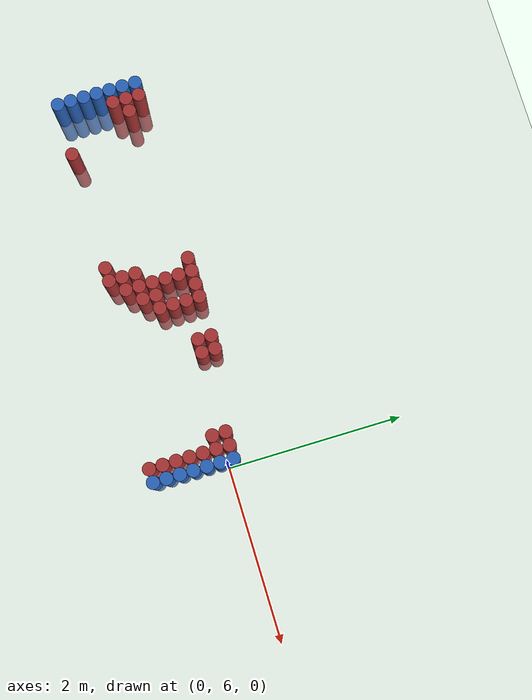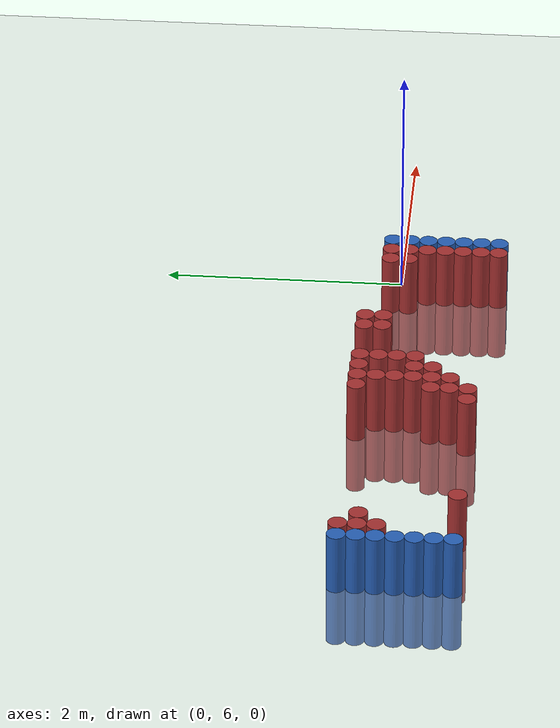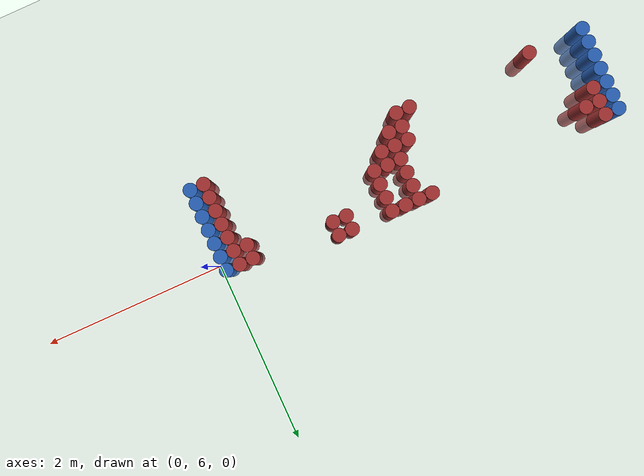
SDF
<sdf version="1.6">
 <world name="default">
  <model name="ground_plane">
   <static>1</static>
   <link name="link">
    <collision name="collision">
     <geometry><plane><normal>0 0 1</normal><size>100 100</size></plane></geometry>
     <surface><friction><ode><mu>100</mu><mu2>50</mu2></ode></friction></surface>
    </collision>
    <visual name="visual">
     <cast_shadows>0</cast_shadows>
     <geometry><plane><normal>0 0 1</normal><size>100 100</size></plane></geometry>
     <material>
      <script><uri>file://media/materials/scripts/gazebo.material</uri><name>Gazebo/Grey</name></script>
     </material>
    </visual>
   </link>
  </model>
  <model name="unit_cylinder_97">
   <static>1</static>
   <pose>-4.425000 5.325000 0.000000 0.000000 0.000000 0.000000</pose>
   <link name="link">
    <inertial>
     <mass>1</mass>
     <inertia><ixx>0.145833</ixx><ixy>0</ixy><ixz>0</ixz><iyy>0.145833</iyy><iyz>0</iyz><izz>0.125</izz></inertia>
    </inertial>
    <collision name="collision">
     <geometry><cylinder><radius>0.075000</radius><length>1</length></cylinder></geometry>
    </collision>
    <visual name="visual">
     <geometry><cylinder><radius>0.075000</radius><length>1</length></cylinder></geometry>
     <material>
      <ambient>0.152000 0.379000 0.720000 1</ambient>
      <diffuse>0.152000 0.379000 0.720000 1</diffuse>
     </material>
     <material>
      <script><name>Gazebo/Grey</name><uri>file://media/materials/scripts/gazebo.material</uri></script>
     </material>
    </visual>
   </link>
  </model>
  <model name="unit_cylinder_98">
   <static>1</static>
   <pose>-4.425000 5.475000 0.000000 0.000000 0.000000 0.000000</pose>
   <link name="link">
    <inertial>
     <mass>1</mass>
     <inertia><ixx>0.145833</ixx><ixy>0</ixy><ixz>0</ixz><iyy>0.145833</iyy><iyz>0</iyz><izz>0.125</izz></inertia>
    </inertial>
    <collision name="collision">
     <geometry><cylinder><radius>0.075000</radius><length>1</length></cylinder></geometry>
    </collision>
    <visual name="visual">
     <geometry><cylinder><radius>0.075000</radius><length>1</length></cylinder></geometry>
     <material>
      <ambient>0.152000 0.379000 0.720000 1</ambient>
      <diffuse>0.152000 0.379000 0.720000 1</diffuse>
     </material>
     <material>
      <script><name>Gazebo/Grey</name><uri>file://media/materials/scripts/gazebo.material</uri></script>
     </material>
    </visual>
   </link>
  </model>
  <model name="unit_cylinder_99">
   <static>1</static>
   <pose>-4.425000 5.625000 0.000000 0.000000 0.000000 0.000000</pose>
   <link name="link">
    <inertial>
     <mass>1</mass>
     <inertia><ixx>0.145833</ixx><ixy>0</ixy><ixz>0</ixz><iyy>0.145833</iyy><iyz>0</iyz><izz>0.125</izz></inertia>
    </inertial>
    <collision name="collision">
     <geometry><cylinder><radius>0.075000</radius><length>1</length></cylinder></geometry>
    </collision>
    <visual name="visual">
     <geometry><cylinder><radius>0.075000</radius><length>1</length></cylinder></geometry>
     <material>
      <ambient>0.152000 0.379000 0.720000 1</ambient>
      <diffuse>0.152000 0.379000 0.720000 1</diffuse>
     </material>
     <material>
      <script><name>Gazebo/Grey</name><uri>file://media/materials/scripts/gazebo.material</uri></script>
     </material>
    </visual>
   </link>
  </model>
  <model name="unit_cylinder_100">
   <static>1</static>
   <pose>-4.425000 5.775000 0.000000 0.000000 0.000000 0.000000</pose>
   <link name="link">
    <inertial>
     <mass>1</mass>
     <inertia><ixx>0.145833</ixx><ixy>0</ixy><ixz>0</ixz><iyy>0.145833</iyy><iyz>0</iyz><izz>0.125</izz></inertia>
    </inertial>
    <collision name="collision">
     <geometry><cylinder><radius>0.075000</radius><length>1</length></cylinder></geometry>
    </collision>
    <visual name="visual">
     <geometry><cylinder><radius>0.075000</radius><length>1</length></cylinder></geometry>
     <material>
      <ambient>0.152000 0.379000 0.720000 1</ambient>
      <diffuse>0.152000 0.379000 0.720000 1</diffuse>
     </material>
     <material>
      <script><name>Gazebo/Grey</name><uri>file://media/materials/scripts/gazebo.material</uri></script>
     </material>
    </visual>
   </link>
  </model>
  <model name="unit_cylinder_101">
   <static>1</static>
   <pose>-4.425000 5.925000 0.000000 0.000000 0.000000 0.000000</pose>
   <link name="link">
    <inertial>
     <mass>1</mass>
     <inertia><ixx>0.145833</ixx><ixy>0</ixy><ixz>0</ixz><iyy>0.145833</iyy><iyz>0</iyz><izz>0.125</izz></inertia>
    </inertial>
    <collision name="collision">
     <geometry><cylinder><radius>0.075000</radius><length>1</length></cylinder></geometry>
    </collision>
    <visual name="visual">
     <geometry><cylinder><radius>0.075000</radius><length>1</length></cylinder></geometry>
     <material>
      <ambient>0.152000 0.379000 0.720000 1</ambient>
      <diffuse>0.152000 0.379000 0.720000 1</diffuse>
     </material>
     <material>
      <script><name>Gazebo/Grey</name><uri>file://media/materials/scripts/gazebo.material</uri></script>
     </material>
    </visual>
   </link>
  </model>
  <model name="unit_cylinder_102">
   <static>1</static>
   <pose>-4.425000 6.075000 0.000000 0.000000 0.000000 0.000000</pose>
   <link name="link">
    <inertial>
     <mass>1</mass>
     <inertia><ixx>0.145833</ixx><ixy>0</ixy><ixz>0</ixz><iyy>0.145833</iyy><iyz>0</iyz><izz>0.125</izz></inertia>
    </inertial>
    <collision name="collision">
     <geometry><cylinder><radius>0.075000</radius><length>1</length></cylinder></geometry>
    </collision>
    <visual name="visual">
     <geometry><cylinder><radius>0.075000</radius><length>1</length></cylinder></geometry>
     <material>
      <ambient>0.152000 0.379000 0.720000 1</ambient>
      <diffuse>0.152000 0.379000 0.720000 1</diffuse>
     </material>
     <material>
      <script><name>Gazebo/Grey</name><uri>file://media/materials/scripts/gazebo.material</uri></script>
     </material>
    </visual>
   </link>
  </model>
  <model name="unit_cylinder_103">
   <static>1</static>
   <pose>-4.425000 6.225000 0.000000 0.000000 0.000000 0.000000</pose>
   <link name="link">
    <inertial>
     <mass>1</mass>
     <inertia><ixx>0.145833</ixx><ixy>0</ixy><ixz>0</ixz><iyy>0.145833</iyy><iyz>0</iyz><izz>0.125</izz></inertia>
    </inertial>
    <collision name="collision">
     <geometry><cylinder><radius>0.075000</radius><length>1</length></cylinder></geometry>
    </collision>
    <visual name="visual">
     <geometry><cylinder><radius>0.075000</radius><length>1</length></cylinder></geometry>
     <material>
      <ambient>0.152000 0.379000 0.720000 1</ambient>
      <diffuse>0.152000 0.379000 0.720000 1</diffuse>
     </material>
     <material>
      <script><name>Gazebo/Grey</name><uri>file://media/materials/scripts/gazebo.material</uri></script>
     </material>
    </visual>
   </link>
  </model>
  <model name="unit_cylinder_126">
   <static>1</static>
   <pose>-4.275000 5.925000 0.000000 0.000000 0.000000 0.000000</pose>
   <link name="link">
    <inertial>
     <mass>1</mass>
     <inertia><ixx>0.145833</ixx><ixy>0</ixy><ixz>0</ixz><iyy>0.145833</iyy><iyz>0</iyz><izz>0.125</izz></inertia>
    </inertial>
    <collision name="collision">
     <geometry><cylinder><radius>0.075000</radius><length>1</length></cylinder></geometry>
    </collision>
    <visual name="visual">
     <geometry><cylinder><radius>0.075000</radius><length>1</length></cylinder></geometry>
     <material>
      <ambient>0.648000 0.192000 0.192000 1</ambient>
      <diffuse>0.648000 0.192000 0.192000 1</diffuse>
     </material>
     <material>
      <script><name>Gazebo/Grey</name><uri>file://media/materials/scripts/gazebo.material</uri></script>
     </material>
    </visual>
   </link>
  </model>
  <model name="unit_cylinder_127">
   <static>1</static>
   <pose>-4.275000 6.075000 0.000000 0.000000 0.000000 0.000000</pose>
   <link name="link">
    <inertial>
     <mass>1</mass>
     <inertia><ixx>0.145833</ixx><ixy>0</ixy><ixz>0</ixz><iyy>0.145833</iyy><iyz>0</iyz><izz>0.125</izz></inertia>
    </inertial>
    <collision name="collision">
     <geometry><cylinder><radius>0.075000</radius><length>1</length></cylinder></geometry>
    </collision>
    <visual name="visual">
     <geometry><cylinder><radius>0.075000</radius><length>1</length></cylinder></geometry>
     <material>
      <ambient>0.648000 0.192000 0.192000 1</ambient>
      <diffuse>0.648000 0.192000 0.192000 1</diffuse>
     </material>
     <material>
      <script><name>Gazebo/Grey</name><uri>file://media/materials/scripts/gazebo.material</uri></script>
     </material>
    </visual>
   </link>
  </model>
  <model name="unit_cylinder_128">
   <static>1</static>
   <pose>-4.275000 6.225000 0.000000 0.000000 0.000000 0.000000</pose>
   <link name="link">
    <inertial>
     <mass>1</mass>
     <inertia><ixx>0.145833</ixx><ixy>0</ixy><ixz>0</ixz><iyy>0.145833</iyy><iyz>0</iyz><izz>0.125</izz></inertia>
    </inertial>
    <collision name="collision">
     <geometry><cylinder><radius>0.075000</radius><length>1</length></cylinder></geometry>
    </collision>
    <visual name="visual">
     <geometry><cylinder><radius>0.075000</radius><length>1</length></cylinder></geometry>
     <material>
      <ambient>0.648000 0.192000 0.192000 1</ambient>
      <diffuse>0.648000 0.192000 0.192000 1</diffuse>
     </material>
     <material>
      <script><name>Gazebo/Grey</name><uri>file://media/materials/scripts/gazebo.material</uri></script>
     </material>
    </visual>
   </link>
  </model>
  <model name="unit_cylinder_143">
   <static>1</static>
   <pose>-4.125000 6.075000 0.000000 0.000000 0.000000 0.000000</pose>
   <link name="link">
    <inertial>
     <mass>1</mass>
     <inertia><ixx>0.145833</ixx><ixy>0</ixy><ixz>0</ixz><iyy>0.145833</iyy><iyz>0</iyz><izz>0.125</izz></inertia>
    </inertial>
    <collision name="collision">
     <geometry><cylinder><radius>0.075000</radius><length>1</length></cylinder></geometry>
    </collision>
    <visual name="visual">
     <geometry><cylinder><radius>0.075000</radius><length>1</length></cylinder></geometry>
     <material>
      <ambient>0.648000 0.192000 0.192000 1</ambient>
      <diffuse>0.648000 0.192000 0.192000 1</diffuse>
     </material>
     <material>
      <script><name>Gazebo/Grey</name><uri>file://media/materials/scripts/gazebo.material</uri></script>
     </material>
    </visual>
   </link>
  </model>
  <model name="unit_cylinder_150">
   <static>1</static>
   <pose>-3.825000 5.325000 0.000000 0.000000 0.000000 0.000000</pose>
   <link name="link">
    <inertial>
     <mass>1</mass>
     <inertia><ixx>0.145833</ixx><ixy>0</ixy><ixz>0</ixz><iyy>0.145833</iyy><iyz>0</iyz><izz>0.125</izz></inertia>
    </inertial>
    <collision name="collision">
     <geometry><cylinder><radius>0.075000</radius><length>1</length></cylinder></geometry>
    </collision>
    <visual name="visual">
     <geometry><cylinder><radius>0.075000</radius><length>1</length></cylinder></geometry>
     <material>
      <ambient>0.648000 0.192000 0.192000 1</ambient>
      <diffuse>0.648000 0.192000 0.192000 1</diffuse>
     </material>
     <material>
      <script><name>Gazebo/Grey</name><uri>file://media/materials/scripts/gazebo.material</uri></script>
     </material>
    </visual>
   </link>
  </model>
  <model name="unit_cylinder_166">
   <static>1</static>
   <pose>-2.475000 5.325000 0.000000 0.000000 0.000000 0.000000</pose>
   <link name="link">
    <inertial>
     <mass>1</mass>
     <inertia><ixx>0.145833</ixx><ixy>0</ixy><ixz>0</ixz><iyy>0.145833</iyy><iyz>0</iyz><izz>0.125</izz></inertia>
    </inertial>
    <collision name="collision">
     <geometry><cylinder><radius>0.075000</radius><length>1</length></cylinder></geometry>
    </collision>
    <visual name="visual">
     <geometry><cylinder><radius>0.075000</radius><length>1</length></cylinder></geometry>
     <material>
      <ambient>0.648000 0.192000 0.192000 1</ambient>
      <diffuse>0.648000 0.192000 0.192000 1</diffuse>
     </material>
     <material>
      <script><name>Gazebo/Grey</name><uri>file://media/materials/scripts/gazebo.material</uri></script>
     </material>
    </visual>
   </link>
  </model>
  <model name="unit_cylinder_176">
   <static>1</static>
   <pose>-2.325000 5.325000 0.000000 0.000000 0.000000 0.000000</pose>
   <link name="link">
    <inertial>
     <mass>1</mass>
     <inertia><ixx>0.145833</ixx><ixy>0</ixy><ixz>0</ixz><iyy>0.145833</iyy><iyz>0</iyz><izz>0.125</izz></inertia>
    </inertial>
    <collision name="collision">
     <geometry><cylinder><radius>0.075000</radius><length>1</length></cylinder></geometry>
    </collision>
    <visual name="visual">
     <geometry><cylinder><radius>0.075000</radius><length>1</length></cylinder></geometry>
     <material>
      <ambient>0.648000 0.192000 0.192000 1</ambient>
      <diffuse>0.648000 0.192000 0.192000 1</diffuse>
     </material>
     <material>
      <script><name>Gazebo/Grey</name><uri>file://media/materials/scripts/gazebo.material</uri></script>
     </material>
    </visual>
   </link>
  </model>
  <model name="unit_cylinder_177">
   <static>1</static>
   <pose>-2.325000 5.475000 0.000000 0.000000 0.000000 0.000000</pose>
   <link name="link">
    <inertial>
     <mass>1</mass>
     <inertia><ixx>0.145833</ixx><ixy>0</ixy><ixz>0</ixz><iyy>0.145833</iyy><iyz>0</iyz><izz>0.125</izz></inertia>
    </inertial>
    <collision name="collision">
     <geometry><cylinder><radius>0.075000</radius><length>1</length></cylinder></geometry>
    </collision>
    <visual name="visual">
     <geometry><cylinder><radius>0.075000</radius><length>1</length></cylinder></geometry>
     <material>
      <ambient>0.648000 0.192000 0.192000 1</ambient>
      <diffuse>0.648000 0.192000 0.192000 1</diffuse>
     </material>
     <material>
      <script><name>Gazebo/Grey</name><uri>file://media/materials/scripts/gazebo.material</uri></script>
     </material>
    </visual>
   </link>
  </model>
  <model name="unit_cylinder_178">
   <static>1</static>
   <pose>-2.325000 5.625000 0.000000 0.000000 0.000000 0.000000</pose>
   <link name="link">
    <inertial>
     <mass>1</mass>
     <inertia><ixx>0.145833</ixx><ixy>0</ixy><ixz>0</ixz><iyy>0.145833</iyy><iyz>0</iyz><izz>0.125</izz></inertia>
    </inertial>
    <collision name="collision">
     <geometry><cylinder><radius>0.075000</radius><length>1</length></cylinder></geometry>
    </collision>
    <visual name="visual">
     <geometry><cylinder><radius>0.075000</radius><length>1</length></cylinder></geometry>
     <material>
      <ambient>0.648000 0.192000 0.192000 1</ambient>
      <diffuse>0.648000 0.192000 0.192000 1</diffuse>
     </material>
     <material>
      <script><name>Gazebo/Grey</name><uri>file://media/materials/scripts/gazebo.material</uri></script>
     </material>
    </visual>
   </link>
  </model>
  <model name="unit_cylinder_179">
   <static>1</static>
   <pose>-2.325000 6.225000 0.000000 0.000000 0.000000 0.000000</pose>
   <link name="link">
    <inertial>
     <mass>1</mass>
     <inertia><ixx>0.145833</ixx><ixy>0</ixy><ixz>0</ixz><iyy>0.145833</iyy><iyz>0</iyz><izz>0.125</izz></inertia>
    </inertial>
    <collision name="collision">
     <geometry><cylinder><radius>0.075000</radius><length>1</length></cylinder></geometry>
    </collision>
    <visual name="visual">
     <geometry><cylinder><radius>0.075000</radius><length>1</length></cylinder></geometry>
     <material>
      <ambient>0.648000 0.192000 0.192000 1</ambient>
      <diffuse>0.648000 0.192000 0.192000 1</diffuse>
     </material>
     <material>
      <script><name>Gazebo/Grey</name><uri>file://media/materials/scripts/gazebo.material</uri></script>
     </material>
    </visual>
   </link>
  </model>
  <model name="unit_cylinder_190">
   <static>1</static>
   <pose>-2.175000 5.475000 0.000000 0.000000 0.000000 0.000000</pose>
   <link name="link">
    <inertial>
     <mass>1</mass>
     <inertia><ixx>0.145833</ixx><ixy>0</ixy><ixz>0</ixz><iyy>0.145833</iyy><iyz>0</iyz><izz>0.125</izz></inertia>
    </inertial>
    <collision name="collision">
     <geometry><cylinder><radius>0.075000</radius><length>1</length></cylinder></geometry>
    </collision>
    <visual name="visual">
     <geometry><cylinder><radius>0.075000</radius><length>1</length></cylinder></geometry>
     <material>
      <ambient>0.648000 0.192000 0.192000 1</ambient>
      <diffuse>0.648000 0.192000 0.192000 1</diffuse>
     </material>
     <material>
      <script><name>Gazebo/Grey</name><uri>file://media/materials/scripts/gazebo.material</uri></script>
     </material>
    </visual>
   </link>
  </model>
  <model name="unit_cylinder_191">
   <static>1</static>
   <pose>-2.175000 5.625000 0.000000 0.000000 0.000000 0.000000</pose>
   <link name="link">
    <inertial>
     <mass>1</mass>
     <inertia><ixx>0.145833</ixx><ixy>0</ixy><ixz>0</ixz><iyy>0.145833</iyy><iyz>0</iyz><izz>0.125</izz></inertia>
    </inertial>
    <collision name="collision">
     <geometry><cylinder><radius>0.075000</radius><length>1</length></cylinder></geometry>
    </collision>
    <visual name="visual">
     <geometry><cylinder><radius>0.075000</radius><length>1</length></cylinder></geometry>
     <material>
      <ambient>0.648000 0.192000 0.192000 1</ambient>
      <diffuse>0.648000 0.192000 0.192000 1</diffuse>
     </material>
     <material>
      <script><name>Gazebo/Grey</name><uri>file://media/materials/scripts/gazebo.material</uri></script>
     </material>
    </visual>
   </link>
  </model>
  <model name="unit_cylinder_192">
   <static>1</static>
   <pose>-2.175000 5.775000 0.000000 0.000000 0.000000 0.000000</pose>
   <link name="link">
    <inertial>
     <mass>1</mass>
     <inertia><ixx>0.145833</ixx><ixy>0</ixy><ixz>0</ixz><iyy>0.145833</iyy><iyz>0</iyz><izz>0.125</izz></inertia>
    </inertial>
    <collision name="collision">
     <geometry><cylinder><radius>0.075000</radius><length>1</length></cylinder></geometry>
    </collision>
    <visual name="visual">
     <geometry><cylinder><radius>0.075000</radius><length>1</length></cylinder></geometry>
     <material>
      <ambient>0.648000 0.192000 0.192000 1</ambient>
      <diffuse>0.648000 0.192000 0.192000 1</diffuse>
     </material>
     <material>
      <script><name>Gazebo/Grey</name><uri>file://media/materials/scripts/gazebo.material</uri></script>
     </material>
    </visual>
   </link>
  </model>
  <model name="unit_cylinder_193">
   <static>1</static>
   <pose>-2.175000 5.925000 0.000000 0.000000 0.000000 0.000000</pose>
   <link name="link">
    <inertial>
     <mass>1</mass>
     <inertia><ixx>0.145833</ixx><ixy>0</ixy><ixz>0</ixz><iyy>0.145833</iyy><iyz>0</iyz><izz>0.125</izz></inertia>
    </inertial>
    <collision name="collision">
     <geometry><cylinder><radius>0.075000</radius><length>1</length></cylinder></geometry>
    </collision>
    <visual name="visual">
     <geometry><cylinder><radius>0.075000</radius><length>1</length></cylinder></geometry>
     <material>
      <ambient>0.648000 0.192000 0.192000 1</ambient>
      <diffuse>0.648000 0.192000 0.192000 1</diffuse>
     </material>
     <material>
      <script><name>Gazebo/Grey</name><uri>file://media/materials/scripts/gazebo.material</uri></script>
     </material>
    </visual>
   </link>
  </model>
  <model name="unit_cylinder_194">
   <static>1</static>
   <pose>-2.175000 6.075000 0.000000 0.000000 0.000000 0.000000</pose>
   <link name="link">
    <inertial>
     <mass>1</mass>
     <inertia><ixx>0.145833</ixx><ixy>0</ixy><ixz>0</ixz><iyy>0.145833</iyy><iyz>0</iyz><izz>0.125</izz></inertia>
    </inertial>
    <collision name="collision">
     <geometry><cylinder><radius>0.075000</radius><length>1</length></cylinder></geometry>
    </collision>
    <visual name="visual">
     <geometry><cylinder><radius>0.075000</radius><length>1</length></cylinder></geometry>
     <material>
      <ambient>0.648000 0.192000 0.192000 1</ambient>
      <diffuse>0.648000 0.192000 0.192000 1</diffuse>
     </material>
     <material>
      <script><name>Gazebo/Grey</name><uri>file://media/materials/scripts/gazebo.material</uri></script>
     </material>
    </visual>
   </link>
  </model>
  <model name="unit_cylinder_195">
   <static>1</static>
   <pose>-2.175000 6.225000 0.000000 0.000000 0.000000 0.000000</pose>
   <link name="link">
    <inertial>
     <mass>1</mass>
     <inertia><ixx>0.145833</ixx><ixy>0</ixy><ixz>0</ixz><iyy>0.145833</iyy><iyz>0</iyz><izz>0.125</izz></inertia>
    </inertial>
    <collision name="collision">
     <geometry><cylinder><radius>0.075000</radius><length>1</length></cylinder></geometry>
    </collision>
    <visual name="visual">
     <geometry><cylinder><radius>0.075000</radius><length>1</length></cylinder></geometry>
     <material>
      <ambient>0.648000 0.192000 0.192000 1</ambient>
      <diffuse>0.648000 0.192000 0.192000 1</diffuse>
     </material>
     <material>
      <script><name>Gazebo/Grey</name><uri>file://media/materials/scripts/gazebo.material</uri></script>
     </material>
    </visual>
   </link>
  </model>
  <model name="unit_cylinder_203">
   <static>1</static>
   <pose>-2.025000 5.625000 0.000000 0.000000 0.000000 0.000000</pose>
   <link name="link">
    <inertial>
     <mass>1</mass>
     <inertia><ixx>0.145833</ixx><ixy>0</ixy><ixz>0</ixz><iyy>0.145833</iyy><iyz>0</iyz><izz>0.125</izz></inertia>
    </inertial>
    <collision name="collision">
     <geometry><cylinder><radius>0.075000</radius><length>1</length></cylinder></geometry>
    </collision>
    <visual name="visual">
     <geometry><cylinder><radius>0.075000</radius><length>1</length></cylinder></geometry>
     <material>
      <ambient>0.648000 0.192000 0.192000 1</ambient>
      <diffuse>0.648000 0.192000 0.192000 1</diffuse>
     </material>
     <material>
      <script><name>Gazebo/Grey</name><uri>file://media/materials/scripts/gazebo.material</uri></script>
     </material>
    </visual>
   </link>
  </model>
  <model name="unit_cylinder_204">
   <static>1</static>
   <pose>-2.025000 5.775000 0.000000 0.000000 0.000000 0.000000</pose>
   <link name="link">
    <inertial>
     <mass>1</mass>
     <inertia><ixx>0.145833</ixx><ixy>0</ixy><ixz>0</ixz><iyy>0.145833</iyy><iyz>0</iyz><izz>0.125</izz></inertia>
    </inertial>
    <collision name="collision">
     <geometry><cylinder><radius>0.075000</radius><length>1</length></cylinder></geometry>
    </collision>
    <visual name="visual">
     <geometry><cylinder><radius>0.075000</radius><length>1</length></cylinder></geometry>
     <material>
      <ambient>0.648000 0.192000 0.192000 1</ambient>
      <diffuse>0.648000 0.192000 0.192000 1</diffuse>
     </material>
     <material>
      <script><name>Gazebo/Grey</name><uri>file://media/materials/scripts/gazebo.material</uri></script>
     </material>
    </visual>
   </link>
  </model>
  <model name="unit_cylinder_205">
   <static>1</static>
   <pose>-2.025000 6.225000 0.000000 0.000000 0.000000 0.000000</pose>
   <link name="link">
    <inertial>
     <mass>1</mass>
     <inertia><ixx>0.145833</ixx><ixy>0</ixy><ixz>0</ixz><iyy>0.145833</iyy><iyz>0</iyz><izz>0.125</izz></inertia>
    </inertial>
    <collision name="collision">
     <geometry><cylinder><radius>0.075000</radius><length>1</length></cylinder></geometry>
    </collision>
    <visual name="visual">
     <geometry><cylinder><radius>0.075000</radius><length>1</length></cylinder></geometry>
     <material>
      <ambient>0.648000 0.192000 0.192000 1</ambient>
      <diffuse>0.648000 0.192000 0.192000 1</diffuse>
     </material>
     <material>
      <script><name>Gazebo/Grey</name><uri>file://media/materials/scripts/gazebo.material</uri></script>
     </material>
    </visual>
   </link>
  </model>
  <model name="unit_cylinder_214">
   <static>1</static>
   <pose>-1.875000 5.775000 0.000000 0.000000 0.000000 0.000000</pose>
   <link name="link">
    <inertial>
     <mass>1</mass>
     <inertia><ixx>0.145833</ixx><ixy>0</ixy><ixz>0</ixz><iyy>0.145833</iyy><iyz>0</iyz><izz>0.125</izz></inertia>
    </inertial>
    <collision name="collision">
     <geometry><cylinder><radius>0.075000</radius><length>1</length></cylinder></geometry>
    </collision>
    <visual name="visual">
     <geometry><cylinder><radius>0.075000</radius><length>1</length></cylinder></geometry>
     <material>
      <ambient>0.648000 0.192000 0.192000 1</ambient>
      <diffuse>0.648000 0.192000 0.192000 1</diffuse>
     </material>
     <material>
      <script><name>Gazebo/Grey</name><uri>file://media/materials/scripts/gazebo.material</uri></script>
     </material>
    </visual>
   </link>
  </model>
  <model name="unit_cylinder_215">
   <static>1</static>
   <pose>-1.875000 5.925000 0.000000 0.000000 0.000000 0.000000</pose>
   <link name="link">
    <inertial>
     <mass>1</mass>
     <inertia><ixx>0.145833</ixx><ixy>0</ixy><ixz>0</ixz><iyy>0.145833</iyy><iyz>0</iyz><izz>0.125</izz></inertia>
    </inertial>
    <collision name="collision">
     <geometry><cylinder><radius>0.075000</radius><length>1</length></cylinder></geometry>
    </collision>
    <visual name="visual">
     <geometry><cylinder><radius>0.075000</radius><length>1</length></cylinder></geometry>
     <material>
      <ambient>0.648000 0.192000 0.192000 1</ambient>
      <diffuse>0.648000 0.192000 0.192000 1</diffuse>
     </material>
     <material>
      <script><name>Gazebo/Grey</name><uri>file://media/materials/scripts/gazebo.material</uri></script>
     </material>
    </visual>
   </link>
  </model>
  <model name="unit_cylinder_216">
   <static>1</static>
   <pose>-1.875000 6.075000 0.000000 0.000000 0.000000 0.000000</pose>
   <link name="link">
    <inertial>
     <mass>1</mass>
     <inertia><ixx>0.145833</ixx><ixy>0</ixy><ixz>0</ixz><iyy>0.145833</iyy><iyz>0</iyz><izz>0.125</izz></inertia>
    </inertial>
    <collision name="collision">
     <geometry><cylinder><radius>0.075000</radius><length>1</length></cylinder></geometry>
    </collision>
    <visual name="visual">
     <geometry><cylinder><radius>0.075000</radius><length>1</length></cylinder></geometry>
     <material>
      <ambient>0.648000 0.192000 0.192000 1</ambient>
      <diffuse>0.648000 0.192000 0.192000 1</diffuse>
     </material>
     <material>
      <script><name>Gazebo/Grey</name><uri>file://media/materials/scripts/gazebo.material</uri></script>
     </material>
    </visual>
   </link>
  </model>
  <model name="unit_cylinder_217">
   <static>1</static>
   <pose>-1.875000 6.225000 0.000000 0.000000 0.000000 0.000000</pose>
   <link name="link">
    <inertial>
     <mass>1</mass>
     <inertia><ixx>0.145833</ixx><ixy>0</ixy><ixz>0</ixz><iyy>0.145833</iyy><iyz>0</iyz><izz>0.125</izz></inertia>
    </inertial>
    <collision name="collision">
     <geometry><cylinder><radius>0.075000</radius><length>1</length></cylinder></geometry>
    </collision>
    <visual name="visual">
     <geometry><cylinder><radius>0.075000</radius><length>1</length></cylinder></geometry>
     <material>
      <ambient>0.648000 0.192000 0.192000 1</ambient>
      <diffuse>0.648000 0.192000 0.192000 1</diffuse>
     </material>
     <material>
      <script><name>Gazebo/Grey</name><uri>file://media/materials/scripts/gazebo.material</uri></script>
     </material>
    </visual>
   </link>
  </model>
  <model name="unit_cylinder_231">
   <static>1</static>
   <pose>-1.425000 6.075000 0.000000 0.000000 0.000000 0.000000</pose>
   <link name="link">
    <inertial>
     <mass>1</mass>
     <inertia><ixx>0.145833</ixx><ixy>0</ixy><ixz>0</ixz><iyy>0.145833</iyy><iyz>0</iyz><izz>0.125</izz></inertia>
    </inertial>
    <collision name="collision">
     <geometry><cylinder><radius>0.075000</radius><length>1</length></cylinder></geometry>
    </collision>
    <visual name="visual">
     <geometry><cylinder><radius>0.075000</radius><length>1</length></cylinder></geometry>
     <material>
      <ambient>0.648000 0.192000 0.192000 1</ambient>
      <diffuse>0.648000 0.192000 0.192000 1</diffuse>
     </material>
     <material>
      <script><name>Gazebo/Grey</name><uri>file://media/materials/scripts/gazebo.material</uri></script>
     </material>
    </visual>
   </link>
  </model>
  <model name="unit_cylinder_232">
   <static>1</static>
   <pose>-1.425000 6.225000 0.000000 0.000000 0.000000 0.000000</pose>
   <link name="link">
    <inertial>
     <mass>1</mass>
     <inertia><ixx>0.145833</ixx><ixy>0</ixy><ixz>0</ixz><iyy>0.145833</iyy><iyz>0</iyz><izz>0.125</izz></inertia>
    </inertial>
    <collision name="collision">
     <geometry><cylinder><radius>0.075000</radius><length>1</length></cylinder></geometry>
    </collision>
    <visual name="visual">
     <geometry><cylinder><radius>0.075000</radius><length>1</length></cylinder></geometry>
     <material>
      <ambient>0.648000 0.192000 0.192000 1</ambient>
      <diffuse>0.648000 0.192000 0.192000 1</diffuse>
     </material>
     <material>
      <script><name>Gazebo/Grey</name><uri>file://media/materials/scripts/gazebo.material</uri></script>
     </material>
    </visual>
   </link>
  </model>
  <model name="unit_cylinder_234">
   <static>1</static>
   <pose>-1.275000 6.075000 0.000000 0.000000 0.000000 0.000000</pose>
   <link name="link">
    <inertial>
     <mass>1</mass>
     <inertia><ixx>0.145833</ixx><ixy>0</ixy><ixz>0</ixz><iyy>0.145833</iyy><iyz>0</iyz><izz>0.125</izz></inertia>
    </inertial>
    <collision name="collision">
     <geometry><cylinder><radius>0.075000</radius><length>1</length></cylinder></geometry>
    </collision>
    <visual name="visual">
     <geometry><cylinder><radius>0.075000</radius><length>1</length></cylinder></geometry>
     <material>
      <ambient>0.648000 0.192000 0.192000 1</ambient>
      <diffuse>0.648000 0.192000 0.192000 1</diffuse>
     </material>
     <material>
      <script><name>Gazebo/Grey</name><uri>file://media/materials/scripts/gazebo.material</uri></script>
     </material>
    </visual>
   </link>
  </model>
  <model name="unit_cylinder_235">
   <static>1</static>
   <pose>-1.275000 6.225000 0.000000 0.000000 0.000000 0.000000</pose>
   <link name="link">
    <inertial>
     <mass>1</mass>
     <inertia><ixx>0.145833</ixx><ixy>0</ixy><ixz>0</ixz><iyy>0.145833</iyy><iyz>0</iyz><izz>0.125</izz></inertia>
    </inertial>
    <collision name="collision">
     <geometry><cylinder><radius>0.075000</radius><length>1</length></cylinder></geometry>
    </collision>
    <visual name="visual">
     <geometry><cylinder><radius>0.075000</radius><length>1</length></cylinder></geometry>
     <material>
      <ambient>0.648000 0.192000 0.192000 1</ambient>
      <diffuse>0.648000 0.192000 0.192000 1</diffuse>
     </material>
     <material>
      <script><name>Gazebo/Grey</name><uri>file://media/materials/scripts/gazebo.material</uri></script>
     </material>
    </visual>
   </link>
  </model>
  <model name="unit_cylinder_250">
   <static>1</static>
   <pose>-0.375000 5.925000 0.000000 0.000000 0.000000 0.000000</pose>
   <link name="link">
    <inertial>
     <mass>1</mass>
     <inertia><ixx>0.145833</ixx><ixy>0</ixy><ixz>0</ixz><iyy>0.145833</iyy><iyz>0</iyz><izz>0.125</izz></inertia>
    </inertial>
    <collision name="collision">
     <geometry><cylinder><radius>0.075000</radius><length>1</length></cylinder></geometry>
    </collision>
    <visual name="visual">
     <geometry><cylinder><radius>0.075000</radius><length>1</length></cylinder></geometry>
     <material>
      <ambient>0.648000 0.192000 0.192000 1</ambient>
      <diffuse>0.648000 0.192000 0.192000 1</diffuse>
     </material>
     <material>
      <script><name>Gazebo/Grey</name><uri>file://media/materials/scripts/gazebo.material</uri></script>
     </material>
    </visual>
   </link>
  </model>
  <model name="unit_cylinder_251">
   <static>1</static>
   <pose>-0.375000 6.075000 0.000000 0.000000 0.000000 0.000000</pose>
   <link name="link">
    <inertial>
     <mass>1</mass>
     <inertia><ixx>0.145833</ixx><ixy>0</ixy><ixz>0</ixz><iyy>0.145833</iyy><iyz>0</iyz><izz>0.125</izz></inertia>
    </inertial>
    <collision name="collision">
     <geometry><cylinder><radius>0.075000</radius><length>1</length></cylinder></geometry>
    </collision>
    <visual name="visual">
     <geometry><cylinder><radius>0.075000</radius><length>1</length></cylinder></geometry>
     <material>
      <ambient>0.648000 0.192000 0.192000 1</ambient>
      <diffuse>0.648000 0.192000 0.192000 1</diffuse>
     </material>
     <material>
      <script><name>Gazebo/Grey</name><uri>file://media/materials/scripts/gazebo.material</uri></script>
     </material>
    </visual>
   </link>
  </model>
  <model name="unit_cylinder_256">
   <static>1</static>
   <pose>-0.225000 5.175000 0.000000 0.000000 0.000000 0.000000</pose>
   <link name="link">
    <inertial>
     <mass>1</mass>
     <inertia><ixx>0.145833</ixx><ixy>0</ixy><ixz>0</ixz><iyy>0.145833</iyy><iyz>0</iyz><izz>0.125</izz></inertia>
    </inertial>
    <collision name="collision">
     <geometry><cylinder><radius>0.075000</radius><length>1</length></cylinder></geometry>
    </collision>
    <visual name="visual">
     <geometry><cylinder><radius>0.075000</radius><length>1</length></cylinder></geometry>
     <material>
      <ambient>0.648000 0.192000 0.192000 1</ambient>
      <diffuse>0.648000 0.192000 0.192000 1</diffuse>
     </material>
     <material>
      <script><name>Gazebo/Grey</name><uri>file://media/materials/scripts/gazebo.material</uri></script>
     </material>
    </visual>
   </link>
  </model>
  <model name="unit_cylinder_257">
   <static>1</static>
   <pose>-0.225000 5.325000 0.000000 0.000000 0.000000 0.000000</pose>
   <link name="link">
    <inertial>
     <mass>1</mass>
     <inertia><ixx>0.145833</ixx><ixy>0</ixy><ixz>0</ixz><iyy>0.145833</iyy><iyz>0</iyz><izz>0.125</izz></inertia>
    </inertial>
    <collision name="collision">
     <geometry><cylinder><radius>0.075000</radius><length>1</length></cylinder></geometry>
    </collision>
    <visual name="visual">
     <geometry><cylinder><radius>0.075000</radius><length>1</length></cylinder></geometry>
     <material>
      <ambient>0.648000 0.192000 0.192000 1</ambient>
      <diffuse>0.648000 0.192000 0.192000 1</diffuse>
     </material>
     <material>
      <script><name>Gazebo/Grey</name><uri>file://media/materials/scripts/gazebo.material</uri></script>
     </material>
    </visual>
   </link>
  </model>
  <model name="unit_cylinder_258">
   <static>1</static>
   <pose>-0.225000 5.475000 0.000000 0.000000 0.000000 0.000000</pose>
   <link name="link">
    <inertial>
     <mass>1</mass>
     <inertia><ixx>0.145833</ixx><ixy>0</ixy><ixz>0</ixz><iyy>0.145833</iyy><iyz>0</iyz><izz>0.125</izz></inertia>
    </inertial>
    <collision name="collision">
     <geometry><cylinder><radius>0.075000</radius><length>1</length></cylinder></geometry>
    </collision>
    <visual name="visual">
     <geometry><cylinder><radius>0.075000</radius><length>1</length></cylinder></geometry>
     <material>
      <ambient>0.648000 0.192000 0.192000 1</ambient>
      <diffuse>0.648000 0.192000 0.192000 1</diffuse>
     </material>
     <material>
      <script><name>Gazebo/Grey</name><uri>file://media/materials/scripts/gazebo.material</uri></script>
     </material>
    </visual>
   </link>
  </model>
  <model name="unit_cylinder_259">
   <static>1</static>
   <pose>-0.225000 5.625000 0.000000 0.000000 0.000000 0.000000</pose>
   <link name="link">
    <inertial>
     <mass>1</mass>
     <inertia><ixx>0.145833</ixx><ixy>0</ixy><ixz>0</ixz><iyy>0.145833</iyy><iyz>0</iyz><izz>0.125</izz></inertia>
    </inertial>
    <collision name="collision">
     <geometry><cylinder><radius>0.075000</radius><length>1</length></cylinder></geometry>
    </collision>
    <visual name="visual">
     <geometry><cylinder><radius>0.075000</radius><length>1</length></cylinder></geometry>
     <material>
      <ambient>0.648000 0.192000 0.192000 1</ambient>
      <diffuse>0.648000 0.192000 0.192000 1</diffuse>
     </material>
     <material>
      <script><name>Gazebo/Grey</name><uri>file://media/materials/scripts/gazebo.material</uri></script>
     </material>
    </visual>
   </link>
  </model>
  <model name="unit_cylinder_260">
   <static>1</static>
   <pose>-0.225000 5.775000 0.000000 0.000000 0.000000 0.000000</pose>
   <link name="link">
    <inertial>
     <mass>1</mass>
     <inertia><ixx>0.145833</ixx><ixy>0</ixy><ixz>0</ixz><iyy>0.145833</iyy><iyz>0</iyz><izz>0.125</izz></inertia>
    </inertial>
    <collision name="collision">
     <geometry><cylinder><radius>0.075000</radius><length>1</length></cylinder></geometry>
    </collision>
    <visual name="visual">
     <geometry><cylinder><radius>0.075000</radius><length>1</length></cylinder></geometry>
     <material>
      <ambient>0.648000 0.192000 0.192000 1</ambient>
      <diffuse>0.648000 0.192000 0.192000 1</diffuse>
     </material>
     <material>
      <script><name>Gazebo/Grey</name><uri>file://media/materials/scripts/gazebo.material</uri></script>
     </material>
    </visual>
   </link>
  </model>
  <model name="unit_cylinder_261">
   <static>1</static>
   <pose>-0.225000 5.925000 0.000000 0.000000 0.000000 0.000000</pose>
   <link name="link">
    <inertial>
     <mass>1</mass>
     <inertia><ixx>0.145833</ixx><ixy>0</ixy><ixz>0</ixz><iyy>0.145833</iyy><iyz>0</iyz><izz>0.125</izz></inertia>
    </inertial>
    <collision name="collision">
     <geometry><cylinder><radius>0.075000</radius><length>1</length></cylinder></geometry>
    </collision>
    <visual name="visual">
     <geometry><cylinder><radius>0.075000</radius><length>1</length></cylinder></geometry>
     <material>
      <ambient>0.648000 0.192000 0.192000 1</ambient>
      <diffuse>0.648000 0.192000 0.192000 1</diffuse>
     </material>
     <material>
      <script><name>Gazebo/Grey</name><uri>file://media/materials/scripts/gazebo.material</uri></script>
     </material>
    </visual>
   </link>
  </model>
  <model name="unit_cylinder_262">
   <static>1</static>
   <pose>-0.225000 6.075000 0.000000 0.000000 0.000000 0.000000</pose>
   <link name="link">
    <inertial>
     <mass>1</mass>
     <inertia><ixx>0.145833</ixx><ixy>0</ixy><ixz>0</ixz><iyy>0.145833</iyy><iyz>0</iyz><izz>0.125</izz></inertia>
    </inertial>
    <collision name="collision">
     <geometry><cylinder><radius>0.075000</radius><length>1</length></cylinder></geometry>
    </collision>
    <visual name="visual">
     <geometry><cylinder><radius>0.075000</radius><length>1</length></cylinder></geometry>
     <material>
      <ambient>0.648000 0.192000 0.192000 1</ambient>
      <diffuse>0.648000 0.192000 0.192000 1</diffuse>
     </material>
     <material>
      <script><name>Gazebo/Grey</name><uri>file://media/materials/scripts/gazebo.material</uri></script>
     </material>
    </visual>
   </link>
  </model>
  <model name="unit_cylinder_271">
   <static>1</static>
   <pose>-0.075000 5.175000 0.000000 0.000000 0.000000 0.000000</pose>
   <link name="link">
    <inertial>
     <mass>1</mass>
     <inertia><ixx>0.145833</ixx><ixy>0</ixy><ixz>0</ixz><iyy>0.145833</iyy><iyz>0</iyz><izz>0.125</izz></inertia>
    </inertial>
    <collision name="collision">
     <geometry><cylinder><radius>0.075000</radius><length>1</length></cylinder></geometry>
    </collision>
    <visual name="visual">
     <geometry><cylinder><radius>0.075000</radius><length>1</length></cylinder></geometry>
     <material>
      <ambient>0.152000 0.379000 0.720000 1</ambient>
      <diffuse>0.152000 0.379000 0.720000 1</diffuse>
     </material>
     <material>
      <script><name>Gazebo/Grey</name><uri>file://media/materials/scripts/gazebo.material</uri></script>
     </material>
    </visual>
   </link>
  </model>
  <model name="unit_cylinder_272">
   <static>1</static>
   <pose>-0.075000 5.325000 0.000000 0.000000 0.000000 0.000000</pose>
   <link name="link">
    <inertial>
     <mass>1</mass>
     <inertia><ixx>0.145833</ixx><ixy>0</ixy><ixz>0</ixz><iyy>0.145833</iyy><iyz>0</iyz><izz>0.125</izz></inertia>
    </inertial>
    <collision name="collision">
     <geometry><cylinder><radius>0.075000</radius><length>1</length></cylinder></geometry>
    </collision>
    <visual name="visual">
     <geometry><cylinder><radius>0.075000</radius><length>1</length></cylinder></geometry>
     <material>
      <ambient>0.152000 0.379000 0.720000 1</ambient>
      <diffuse>0.152000 0.379000 0.720000 1</diffuse>
     </material>
     <material>
      <script><name>Gazebo/Grey</name><uri>file://media/materials/scripts/gazebo.material</uri></script>
     </material>
    </visual>
   </link>
  </model>
  <model name="unit_cylinder_273">
   <static>1</static>
   <pose>-0.075000 5.475000 0.000000 0.000000 0.000000 0.000000</pose>
   <link name="link">
    <inertial>
     <mass>1</mass>
     <inertia><ixx>0.145833</ixx><ixy>0</ixy><ixz>0</ixz><iyy>0.145833</iyy><iyz>0</iyz><izz>0.125</izz></inertia>
    </inertial>
    <collision name="collision">
     <geometry><cylinder><radius>0.075000</radius><length>1</length></cylinder></geometry>
    </collision>
    <visual name="visual">
     <geometry><cylinder><radius>0.075000</radius><length>1</length></cylinder></geometry>
     <material>
      <ambient>0.152000 0.379000 0.720000 1</ambient>
      <diffuse>0.152000 0.379000 0.720000 1</diffuse>
     </material>
     <material>
      <script><name>Gazebo/Grey</name><uri>file://media/materials/scripts/gazebo.material</uri></script>
     </material>
    </visual>
   </link>
  </model>
  <model name="unit_cylinder_274">
   <static>1</static>
   <pose>-0.075000 5.625000 0.000000 0.000000 0.000000 0.000000</pose>
   <link name="link">
    <inertial>
     <mass>1</mass>
     <inertia><ixx>0.145833</ixx><ixy>0</ixy><ixz>0</ixz><iyy>0.145833</iyy><iyz>0</iyz><izz>0.125</izz></inertia>
    </inertial>
    <collision name="collision">
     <geometry><cylinder><radius>0.075000</radius><length>1</length></cylinder></geometry>
    </collision>
    <visual name="visual">
     <geometry><cylinder><radius>0.075000</radius><length>1</length></cylinder></geometry>
     <material>
      <ambient>0.152000 0.379000 0.720000 1</ambient>
      <diffuse>0.152000 0.379000 0.720000 1</diffuse>
     </material>
     <material>
      <script><name>Gazebo/Grey</name><uri>file://media/materials/scripts/gazebo.material</uri></script>
     </material>
    </visual>
   </link>
  </model>
  <model name="unit_cylinder_275">
   <static>1</static>
   <pose>-0.075000 5.775000 0.000000 0.000000 0.000000 0.000000</pose>
   <link name="link">
    <inertial>
     <mass>1</mass>
     <inertia><ixx>0.145833</ixx><ixy>0</ixy><ixz>0</ixz><iyy>0.145833</iyy><iyz>0</iyz><izz>0.125</izz></inertia>
    </inertial>
    <collision name="collision">
     <geometry><cylinder><radius>0.075000</radius><length>1</length></cylinder></geometry>
    </collision>
    <visual name="visual">
     <geometry><cylinder><radius>0.075000</radius><length>1</length></cylinder></geometry>
     <material>
      <ambient>0.152000 0.379000 0.720000 1</ambient>
      <diffuse>0.152000 0.379000 0.720000 1</diffuse>
     </material>
     <material>
      <script><name>Gazebo/Grey</name><uri>file://media/materials/scripts/gazebo.material</uri></script>
     </material>
    </visual>
   </link>
  </model>
  <model name="unit_cylinder_276">
   <static>1</static>
   <pose>-0.075000 5.925000 0.000000 0.000000 0.000000 0.000000</pose>
   <link name="link">
    <inertial>
     <mass>1</mass>
     <inertia><ixx>0.145833</ixx><ixy>0</ixy><ixz>0</ixz><iyy>0.145833</iyy><iyz>0</iyz><izz>0.125</izz></inertia>
    </inertial>
    <collision name="collision">
     <geometry><cylinder><radius>0.075000</radius><length>1</length></cylinder></geometry>
    </collision>
    <visual name="visual">
     <geometry><cylinder><radius>0.075000</radius><length>1</length></cylinder></geometry>
     <material>
      <ambient>0.152000 0.379000 0.720000 1</ambient>
      <diffuse>0.152000 0.379000 0.720000 1</diffuse>
     </material>
     <material>
      <script><name>Gazebo/Grey</name><uri>file://media/materials/scripts/gazebo.material</uri></script>
     </material>
    </visual>
   </link>
  </model>
  <model name="unit_cylinder_277">
   <static>1</static>
   <pose>-0.075000 6.075000 0.000000 0.000000 0.000000 0.000000</pose>
   <link name="link">
    <inertial>
     <mass>1</mass>
     <inertia><ixx>0.145833</ixx><ixy>0</ixy><ixz>0</ixz><iyy>0.145833</iyy><iyz>0</iyz><izz>0.125</izz></inertia>
    </inertial>
    <collision name="collision">
     <geometry><cylinder><radius>0.075000</radius><length>1</length></cylinder></geometry>
    </collision>
    <visual name="visual">
     <geometry><cylinder><radius>0.075000</radius><length>1</length></cylinder></geometry>
     <material>
      <ambient>0.152000 0.379000 0.720000 1</ambient>
      <diffuse>0.152000 0.379000 0.720000 1</diffuse>
     </material>
     <material>
      <script><name>Gazebo/Grey</name><uri>file://media/materials/scripts/gazebo.material</uri></script>
     </material>
    </visual>
   </link>
  </model>
 </world>
</sdf>
